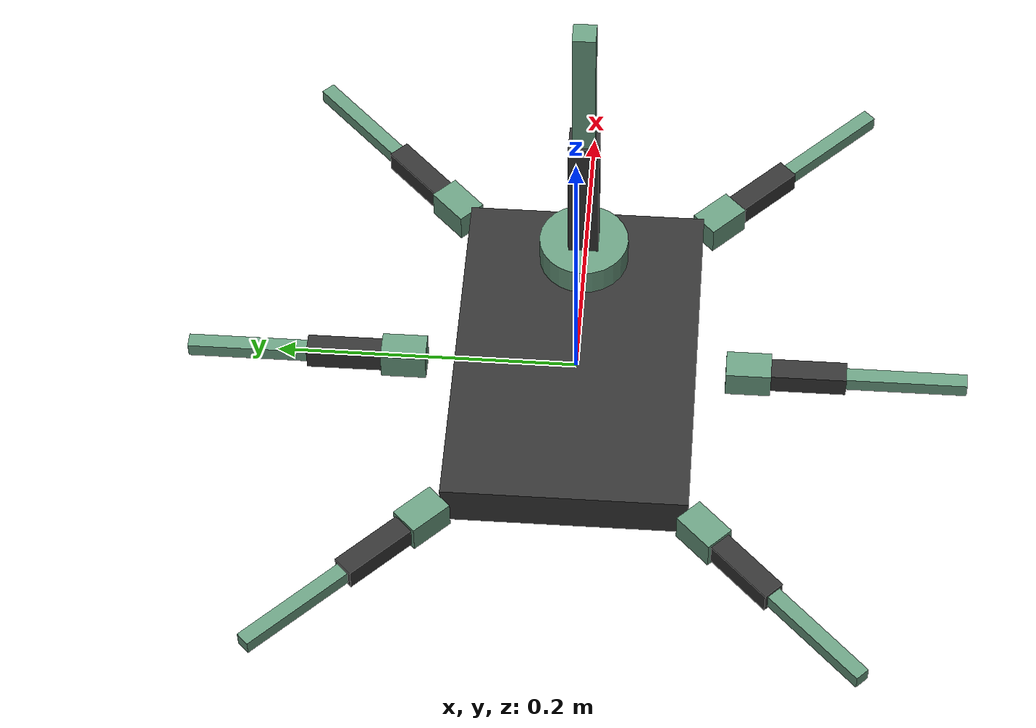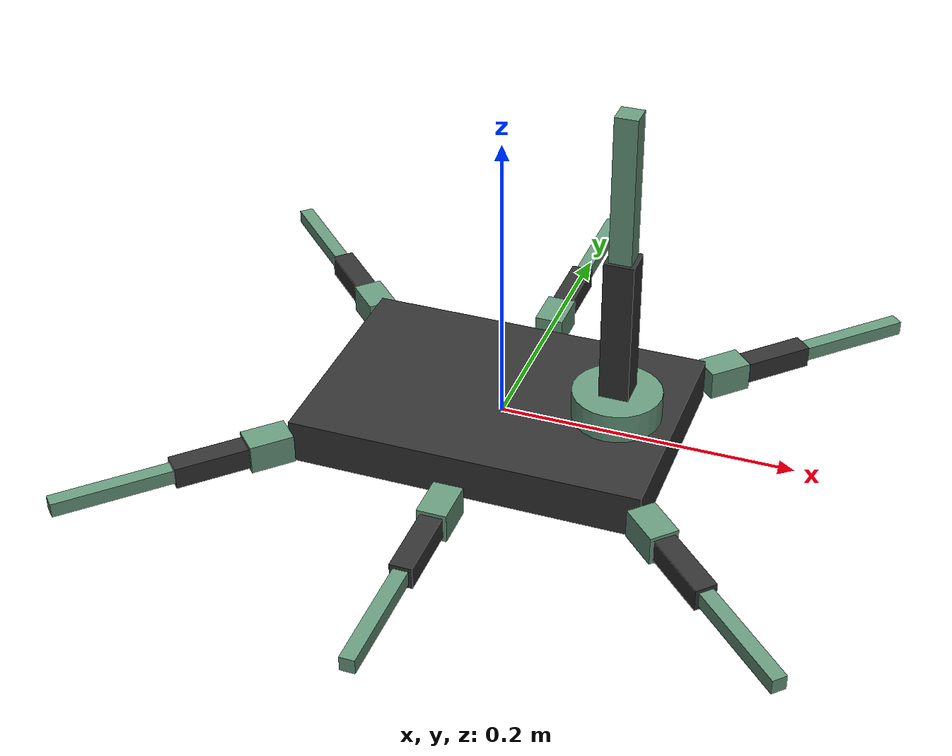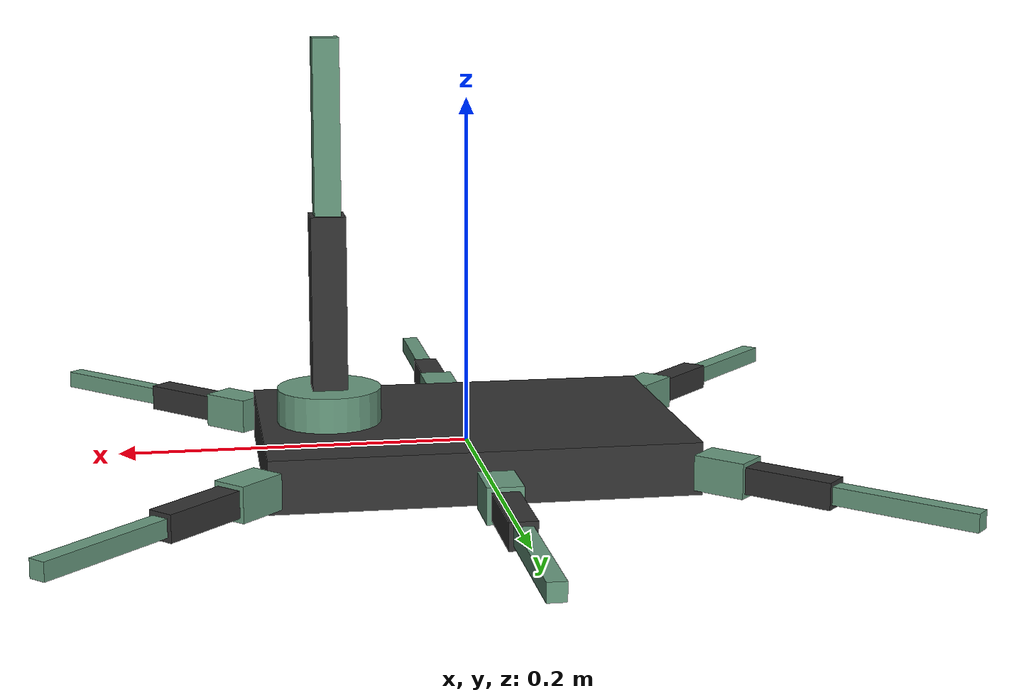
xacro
<?xml version="1.0"?>
<robot xmlns:xacro="http://www.ros.org/wiki/xacro" name="hexapod_master">

  <!-- Constants -->
  <xacro:property name="body_m" value="1.0" />
  <xacro:property name="leg_m" value="0.1" />

  <!-- Leg Dimensions (Sync with hexapod_config.yaml) -->
  <xacro:property name="l1" value="0.03" />
  <xacro:property name="l2" value="0.05" />
  <xacro:property name="l3" value="0.08" />

  <!-- Materials -->
  <material name="dark_gray"><color rgba="0.2 0.2 0.2 1.0"/></material>
  <material name="green"><color rgba="0.41 0.61 0.5 1.0"/></material>

  <!-- Inertia Macros -->
  <xacro:macro name="box_inertia" params="m x y z">
    <inertial>
      <mass value="${m}"/>
      <inertia ixx="${m*(y*y+z*z)/12}" ixy="0" ixz="0" iyy="${m*(x*x+z*z)/12}" iyz="0" izz="${m*(x*x+y*y)/12}"/>
    </inertial>
  </xacro:macro>

  <!-- Gazebo ros2_control plugin -->
  <ros2_control name="GazeboSystem" type="system">
    <hardware><plugin>gazebo_ros2_control/GazeboSystem</plugin></hardware>
    <xacro:macro name="joint_interface" params="name">
      <joint name="${name}">
        <command_interface name="position"/>
        <state_interface name="position"/>
      </joint>
    </xacro:macro>

    <!-- Generate interfaces for all joints -->
    <xacro:joint_interface name="rf_coxa_joint"/><xacro:joint_interface name="rf_femur_joint"/><xacro:joint_interface name="rf_tibia_joint"/>
    <xacro:joint_interface name="rm_coxa_joint"/><xacro:joint_interface name="rm_femur_joint"/><xacro:joint_interface name="rm_tibia_joint"/>
    <xacro:joint_interface name="rb_coxa_joint"/><xacro:joint_interface name="rb_femur_joint"/><xacro:joint_interface name="rb_tibia_joint"/>
    <xacro:joint_interface name="lf_coxa_joint"/><xacro:joint_interface name="lf_femur_joint"/><xacro:joint_interface name="lf_tibia_joint"/>
    <xacro:joint_interface name="lm_coxa_joint"/><xacro:joint_interface name="lm_femur_joint"/><xacro:joint_interface name="lm_tibia_joint"/>
    <xacro:joint_interface name="lb_coxa_joint"/><xacro:joint_interface name="lb_femur_joint"/><xacro:joint_interface name="lb_tibia_joint"/>
  </ros2_control>

  <gazebo>
    <plugin name="gazebo_ros2_control" filename="libgazebo_ros2_control.so">
      <parameters>/Users/slava/Documents/xpi-blocks/projects/hexapod_master/config/hexapod_controllers.yaml</parameters>
    </plugin>
  </gazebo>

  <!-- IMU Simulation -->
  <gazebo reference="base_link">
    <sensor name="imu_sensor" type="imu">
      <always_on>true</always_on>
      <update_rate>50</update_rate>
      <visualize>true</visualize>
      <topic>/imu/data</topic>
      <plugin filename="libgazebo_ros_imu_sensor.so" name="imu_plugin">
        <ros>
          <namespace>/</namespace>
          <remapping>~/out:=imu/data</remapping>
        </ros>
        <initial_orientation_as_reference>false</initial_orientation_as_reference>
      </plugin>
    </sensor>
  </gazebo>

  <!-- Body -->
  <link name="base_link">
    <visual><geometry><box size="0.24 0.16 0.03"/></geometry><material name="dark_gray"/></visual>
    <collision><geometry><box size="0.24 0.16 0.03"/></geometry></collision>
    <xacro:box_inertia m="1.0" x="0.24" y="0.16" z="0.03"/>
  </link>

  <!-- Leg Macro -->
  <xacro:macro name="leg" params="prefix x y yaw">
    <!-- Coxa -->
    <joint name="${prefix}_coxa_joint" type="revolute">
      <parent link="base_link"/><child link="${prefix}_coxa_link"/>
      <origin xyz="${x} ${y} 0" rpy="0 0 ${yaw}"/>
      <axis xyz="0 0 1"/><limit lower="-1.57" upper="1.57" effort="10" velocity="1.0"/>
    </joint>
    <link name="${prefix}_coxa_link">
      <visual><origin xyz="${l1/2} 0 0"/><geometry><box size="${l1} 0.02 0.02"/></geometry><material name="green"/></visual>
      <collision><origin xyz="${l1/2} 0 0"/><geometry><box size="${l1} 0.02 0.02"/></geometry></collision>
      <xacro:box_inertia m="0.05" x="${l1}" y="0.02" z="0.02"/>
    </link>
    <gazebo reference="${prefix}_coxa_link"><material>Gazebo/Green</material></gazebo>

    <!-- Femur -->
    <joint name="${prefix}_femur_joint" type="revolute">
      <parent link="${prefix}_coxa_link"/><child link="${prefix}_femur_link"/>
      <origin xyz="${l1} 0 0" rpy="0 0 0"/><axis xyz="0 1 0"/>
      <limit lower="-1.57" upper="1.57" effort="10" velocity="1.0"/>
    </joint>
    <link name="${prefix}_femur_link">
      <visual><origin xyz="${l2/2} 0 0"/><geometry><box size="${l2} 0.015 0.015"/></geometry><material name="dark_gray"/></visual>
      <collision><origin xyz="${l2/2} 0 0"/><geometry><box size="${l2} 0.015 0.015"/></geometry></collision>
      <xacro:box_inertia m="0.1" x="${l2}" y="0.015" z="0.015"/>
    </link>
    <gazebo reference="${prefix}_femur_link"><material>Gazebo/DarkGrey</material></gazebo>

    <!-- Tibia -->
    <joint name="${prefix}_tibia_joint" type="revolute">
      <parent link="${prefix}_femur_link"/><child link="${prefix}_tibia_link"/>
      <origin xyz="${l2} 0 0" rpy="0 0 0"/><axis xyz="0 1 0"/>
      <limit lower="-3.14" upper="0" effort="10" velocity="1.0"/>
    </joint>
    <link name="${prefix}_tibia_link">
      <visual><origin xyz="${l3/2} 0 0"/><geometry><box size="${l3} 0.01 0.01"/></geometry><material name="green"/></visual>
      <collision><origin xyz="${l3/2} 0 0"/><geometry><box size="${l3} 0.01 0.01"/></geometry></collision>
      <xacro:box_inertia m="0.1" x="${l3}" y="0.01" z="0.01"/>
    </link>
    <gazebo reference="${prefix}_tibia_link">
      <material>Gazebo/Green</material>
      <mu1>1.0</mu1>
      <mu2>1.0</mu2>
      <kp>1000000.0</kp>
      <kd>1.0</kd>
      <!-- Contact Sensor for Terrain Feedback -->
      <sensor name="${prefix}_contact_sensor" type="contact">
        <always_on>true</always_on>
        <update_rate>50</update_rate>
        <contact>
          <collision>${prefix}_tibia_link_collision</collision>
        </contact>
        <plugin name="${prefix}_contact_plugin" filename="libgazebo_ros_contact.so">
          <ros>
            <namespace>/</namespace>
            <remapping>~/out:=${prefix}_contact</remapping>
          </ros>
        </plugin>
      </sensor>
    </gazebo>
  </xacro:macro>

  <!-- Instantiate 6 Legs -->
  <xacro:leg prefix="rf" x="0.12"  y="-0.08" yaw="-0.785"/>
  <xacro:leg prefix="rm" x="0.0"   y="-0.10" yaw="-1.571"/>
  <xacro:leg prefix="rb" x="-0.12" y="-0.08" yaw="-2.356"/>
  <xacro:leg prefix="lf" x="0.12"  y="0.08"  yaw="0.785"/>
  <xacro:leg prefix="lm" x="0.0"   y="0.10"  yaw="1.571"/>
  <xacro:leg prefix="lb" x="-0.12" y="0.08"  yaw="2.356"/>

  <!-- Manipulator Arm -->
  <xacro:property name="arm_x" value="0.08" />
  <xacro:property name="arm_z" value="0.015" />
  <xacro:property name="al1" value="0.04" />
  <xacro:property name="al2" value="0.10" />
  <xacro:property name="al3" value="0.10" />

  <!-- Arm Base -->
  <joint name="arm_base_joint" type="revolute">
    <parent link="base_link"/><child link="arm_base_link"/>
    <origin xyz="${arm_x} 0 ${arm_z}" rpy="0 0 0"/>
    <axis xyz="0 0 1"/><limit lower="-3.14" upper="3.14" effort="5" velocity="1.0"/>
  </joint>
  <link name="arm_base_link">
    <visual><geometry><cylinder radius="0.03" length="${al1}"/></geometry><material name="green"/></visual>
    <xacro:box_inertia m="0.1" x="0.03" y="0.03" z="${al1}"/>
  </link>

  <!-- Arm Link 1 -->
  <joint name="arm_joint_1" type="revolute">
    <parent link="arm_base_link"/><child link="arm_link_1"/>
    <origin xyz="0 0 ${al1/2}" rpy="0 0 0"/>
    <axis xyz="0 1 0"/><limit lower="-1.57" upper="1.57" effort="5" velocity="1.0"/>
  </joint>
  <link name="arm_link_1">
    <visual><origin xyz="0 0 ${al2/2}"/><geometry><box size="0.02 0.02 ${al2}"/></geometry><material name="dark_gray"/></visual>
    <xacro:box_inertia m="0.1" x="0.02" y="0.02" z="${al2}"/>
  </link>

  <!-- Arm Link 2 -->
  <joint name="arm_joint_2" type="revolute">
    <parent link="arm_link_1"/><child link="arm_link_2"/>
    <origin xyz="0 0 ${al2}" rpy="0 0 0"/>
    <axis xyz="0 1 0"/><limit lower="-2.5" upper="2.5" effort="5" velocity="1.0"/>
  </joint>
  <link name="arm_link_2">
    <visual><origin xyz="0 0 ${al3/2}"/><geometry><box size="0.015 0.015 ${al3}"/></geometry><material name="green"/></visual>
    <xacro:box_inertia m="0.05" x="0.015" y="0.015" z="${al3}"/>
  </link>

</robot>
